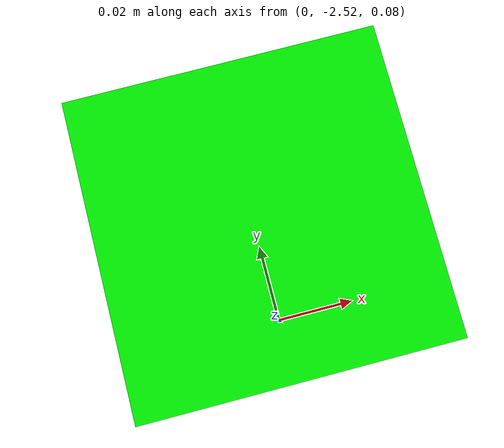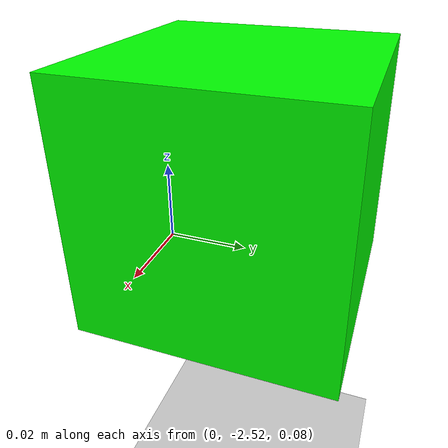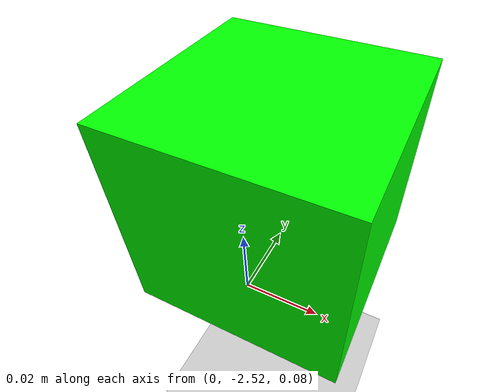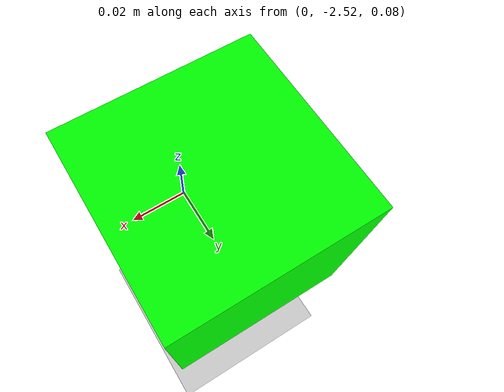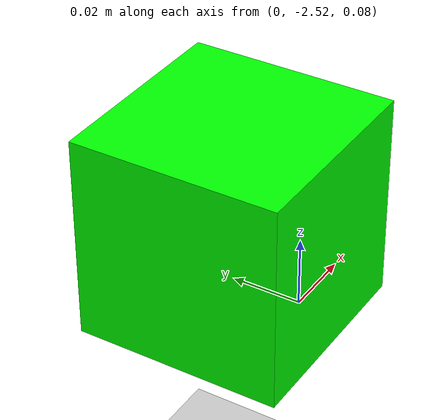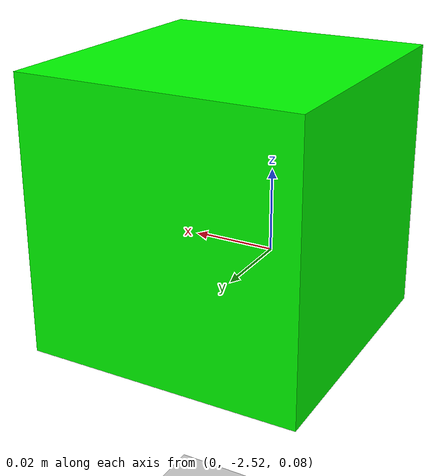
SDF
<?xml version="1.0" ?>
<sdf version="1.5">
  <world name="default">
    <!-- A global light source -->
    <include>
      <uri>model://sun</uri>
    </include>
    <!-- A ground plane -->
    <include>
      <uri>model://ground_plane</uri>
    </include>
    <scene>
      <ambient>0.4 0.4 0.4 1</ambient>
      <background>0.7 0.7 0.7 1</background>
      <shadows>0</shadows>
      <sky>
        <clouds>
          <speed>12</speed>
        </clouds>
      </sky>
    </scene>
    <physics name='default_physics' default='0' type='ode'>
      <gravity>0 0 -9.8066</gravity>
      <ode>
        <solver>
          <type>quick</type>
          <iters>20</iters>
          <sor>1.3</sor>
          <use_dynamic_moi_rescaling>0</use_dynamic_moi_rescaling>
        </solver>
        <constraints>
          <cfm>0.02</cfm>
          <erp>0.2</erp>
          <contact_max_correcting_vel>100</contact_max_correcting_vel>
          <contact_surface_layer>0.001</contact_surface_layer>
        </constraints>
      </ode>
      <max_step_size>0.002</max_step_size>
      <real_time_factor>1</real_time_factor>
      <real_time_update_rate>250</real_time_update_rate>
      <magnetic_field>6.0e-6 2.3e-5 -4.2e-5</magnetic_field>
    </physics>
    <include>
      <name>payload_1</name>
      <uri>model://payload_box</uri>
      <pose>0 -2.5 0.1 0 0 0</pose>
    </include>
  </world>
</sdf>

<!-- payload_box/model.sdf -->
<sdf version="1.5">
  <model name="Payload box">
    <pose>0 0 0.75  0 0 0</pose>
    <static>false</static>
    <link name="base_link">
      <inertial>
        <mass>0.2</mass>
        <inertia>
          <ixx>0.001</ixx>
          <ixy>0</ixy>
          <ixz>0</ixz>
          <iyy>0.001</iyy>
          <iyz>0</iyz>
          <izz>0.001</izz>
        </inertia>
      </inertial>

      <collision name="collision">
        <geometry>
          <box>
            <size>0.06 0.06 0.06</size>
          </box>
        </geometry>
	      <surface>
          <bounce>
            <restitution_coefficient>0.000000</restitution_coefficient>
            <threshold>100000.000000</threshold>
          </bounce>
          <contact>
            <ode>
              <soft_cfm>0.000000</soft_cfm>
              <soft_erp>0.200000</soft_erp>
              <kp>1000000000.000000</kp>
              <kd>1.000000</kd>
              <max_vel>100.000000</max_vel>
              <min_depth>0.001000</min_depth>
            </ode>
          </contact>
          <friction>
            <ode>
              <mu>200</mu>
              <mu2>100</mu2>
            </ode>
          </friction>
        </surface>
      </collision>
      <visual name="visual">
        <geometry>
          <box><size>0.06 0.06 0.06</size></box>
	    </geometry>
	    <material>
	        <ambient>0 1.0 0 1</ambient>
	        <diffuse>0 1.0 0 1</diffuse>
	        <emissive>0 0.5 0 1</emissive>
	    </material>
      </visual>
    </link>
    <plugin name='payload' filename='libgazebo_payload_plugin.so'/>
  </model>
</sdf>
